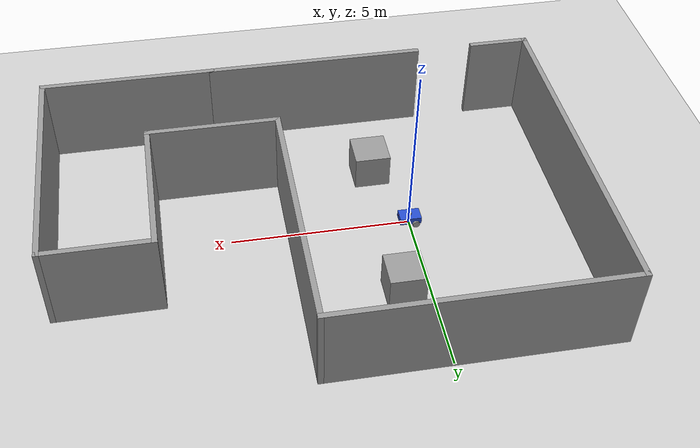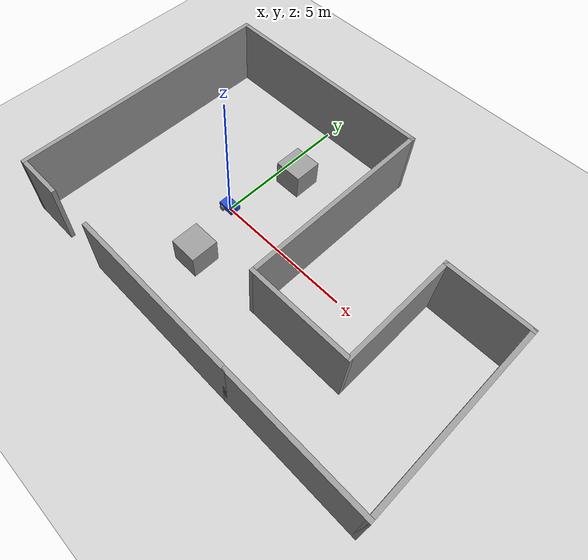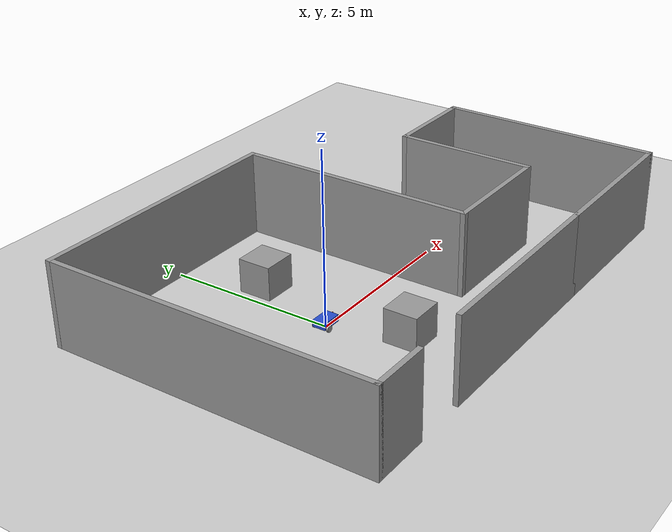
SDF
<sdf version="1.7">
 <world name="default">
  <light name="sun" type="directional">
   <pose>0 0 10 0 -0 0</pose>
   <diffuse>0.8 0.8 0.8 1</diffuse>
   <specular>0.2 0.2 0.2 1</specular>
   <attenuation>
    <range>1000</range>
    <constant>0.9</constant>
    <linear>0.01</linear>
    <quadratic>0.001</quadratic>
   </attenuation>
   <direction>-0.5 0.1 -0.9</direction>
   <spot><inner_angle>0</inner_angle><outer_angle>0</outer_angle><falloff>0</falloff></spot>
  </light>
  <model name="ground_plane">
   <static>1</static>
   <link name="link">
    <collision name="collision">
     <geometry><plane><normal>0 0 1</normal><size>100 100</size></plane></geometry>
     <surface>
      <contact><collide_bitmask>65535</collide_bitmask></contact>
      <friction><ode><mu>100</mu><mu2>50</mu2></ode></friction>
     </surface>
    </collision>
    <visual name="visual">
     <cast_shadows>0</cast_shadows>
     <geometry><plane><normal>0 0 1</normal><size>100 100</size></plane></geometry>
     <material>
      <script><uri>file://media/materials/scripts/gazebo.material</uri><name>Gazebo/Grey</name></script>
     </material>
    </visual>
   </link>
  </model>
  <gravity>0 0 -9.8</gravity>
  <magnetic_field>6e-06 2.3e-05 -4.2e-05</magnetic_field>
  <atmosphere type="adiabatic"/>
  <physics type="ode">
   <max_step_size>0.001</max_step_size>
   <real_time_factor>1</real_time_factor>
   <real_time_update_rate>1000</real_time_update_rate>
  </physics>
  <scene><ambient>0.4 0.4 0.4 1</ambient><background>0.7 0.7 0.7 1</background><shadows>1</shadows></scene>
  <audio><device>default</device></audio>
  <spherical_coordinates>
   <surface_model>EARTH_WGS84</surface_model>
   <latitude_deg>0</latitude_deg>
   <longitude_deg>0</longitude_deg>
   <elevation>0</elevation>
   <heading_deg>0</heading_deg>
  </spherical_coordinates>
  <model name="my_robot">
   <link name="base_link">
    <inertial>
     <pose>0.007034 0 0.000706 1.5708 -0 1.5708</pose>
     <mass>15.76</mass>
     <inertia>
      <ixx>4.53423</ixx>
      <ixy>8.2384e-19</ixy>
      <ixz>-6.39748e-18</ixz>
      <iyy>5.87525</iyy>
      <iyz>0.00290825</iyz>
      <izz>2.26165</izz>
     </inertia>
    </inertial>
    <collision name="base_link_collision">
     <pose>0 0 0.1 0 -0 0</pose>
     <geometry><box><size>0.6 0.4 0.2</size></box></geometry>
    </collision>
    <collision name="base_link_fixed_joint_lump__caster_wheel_link_collision_1">
     <pose>0.2 0 -0.05 0 -0 0</pose>
     <geometry><sphere><radius>0.05</radius></sphere></geometry>
     <surface><friction><ode><mu>0.1</mu><mu2>0.1</mu2></ode></friction></surface>
    </collision>
    <collision name="base_link_fixed_joint_lump__camera_link_collision_2">
     <pose>0.31 0 0.2 0 -0 0</pose>
     <geometry><box><size>0.02 0.02 0.02</size></box></geometry>
    </collision>
    <collision name="base_link_fixed_joint_lump__imu_link_collision_3">
     <pose>0 0 0.01 0 -0 0</pose>
     <geometry><box><size>0.1 0.1 0.1</size></box></geometry>
    </collision>
    <collision name="base_link_fixed_joint_lump__lidar_link_collision_4">
     <pose>0 0 0.225 0 -0 0</pose>
     <geometry><cylinder><length>0.05</length><radius>0.05</radius></cylinder></geometry>
    </collision>
    <visual name="base_link_visual">
     <pose>0 0 0.1 0 -0 0</pose>
     <geometry><box><size>0.6 0.4 0.2</size></box></geometry>
     <material>
      <script><name>Gazebo/Blue</name><uri>file://media/materials/scripts/gazebo.material</uri></script>
     </material>
    </visual>
    <visual name="base_link_fixed_joint_lump__caster_wheel_link_visual_1">
     <pose>0.2 0 -0.05 0 -0 0</pose>
     <geometry><sphere><radius>0.05</radius></sphere></geometry>
     <material>
      <script><name>Gazebo/Grey</name><uri>file://media/materials/scripts/gazebo.material</uri></script>
     </material>
    </visual>
    <visual name="base_link_fixed_joint_lump__camera_link_visual_2">
     <pose>0.31 0 0.2 0 -0 0</pose>
     <geometry><box><size>0.02 0.02 0.02</size></box></geometry>
     <material>
      <script><name>Gazebo/Red</name><uri>file://media/materials/scripts/gazebo.material</uri></script>
     </material>
    </visual>
    <visual name="base_link_fixed_joint_lump__imu_link_visual_3">
     <pose>0 0 0.01 0 -0 0</pose>
     <geometry><box><size>0.1 0.1 0.1</size></box></geometry>
    </visual>
    <visual name="base_link_fixed_joint_lump__lidar_link_visual_4">
     <pose>0 0 0.225 0 -0 0</pose>
     <geometry><cylinder><length>0.05</length><radius>0.05</radius></cylinder></geometry>
    </visual>
    <sensor name="depth_camera" type="depth">
     <visualize>1</visualize>
     <update_rate>10</update_rate>
     <camera name="camera">
      <horizontal_fov>1.089</horizontal_fov>
      <image><width>640</width><height>480</height><format>R8G8B8</format></image>
      <clip><near>0.05</near><far>8</far></clip>
     </camera>
     <plugin name="depth_camera_controller" filename="libgazebo_ros_camera.so">
      <frame_name>camera_depth_frame</frame_name>
     </plugin>
     <pose>0.31 0 0.2 0 -0 0</pose>
    </sensor>
    <sensor name="imu_sensor" type="imu">
     <plugin name="imu_plugin" filename="libgazebo_ros_imu_sensor.so">
      <ros><remapping>~/out:=imu</remapping></ros>
     </plugin>
     <always_on>1</always_on>
     <update_rate>100</update_rate>
     <visualize>1</visualize>
     <imu>
      <angular_velocity>
       <x>
        <noise type="gaussian">
         <mean>0</mean>
         <stddev>0.0002</stddev>
         <bias_mean>7.5e-06</bias_mean>
         <bias_stddev>8e-07</bias_stddev>
        </noise>
       </x>
       <y>
        <noise type="gaussian">
         <mean>0</mean>
         <stddev>0.0002</stddev>
         <bias_mean>7.5e-06</bias_mean>
         <bias_stddev>8e-07</bias_stddev>
        </noise>
       </y>
       <z>
        <noise type="gaussian">
         <mean>0</mean>
         <stddev>0.0002</stddev>
         <bias_mean>7.5e-06</bias_mean>
         <bias_stddev>8e-07</bias_stddev>
        </noise>
       </z>
      </angular_velocity>
      <linear_acceleration>
       <x>
        <noise type="gaussian">
         <mean>0</mean>
         <stddev>0.017</stddev>
         <bias_mean>0.1</bias_mean>
         <bias_stddev>0.001</bias_stddev>
        </noise>
       </x>
       <y>
        <noise type="gaussian">
         <mean>0</mean>
         <stddev>0.017</stddev>
         <bias_mean>0.1</bias_mean>
         <bias_stddev>0.001</bias_stddev>
        </noise>
       </y>
       <z>
        <noise type="gaussian">
         <mean>0</mean>
         <stddev>0.017</stddev>
         <bias_mean>0.1</bias_mean>
         <bias_stddev>0.001</bias_stddev>
        </noise>
       </z>
      </linear_acceleration>
     </imu>
     <pose>0 0 0.01 0 -0 0</pose>
    </sensor>
    <sensor name="lidar" type="ray">
     <always_on>1</always_on>
     <visualize>1</visualize>
     <update_rate>20</update_rate>
     <ray>
      <scan>
       <horizontal>
        <samples>360</samples>
        <resolution>1</resolution>
        <min_angle>0</min_angle>
        <max_angle>6.28</max_angle>
       </horizontal>
       <vertical><samples>1</samples><min_angle>0</min_angle><max_angle>0</max_angle></vertical>
      </scan>
      <range><min>0.12</min><max>3.5</max><resolution>0.015</resolution></range>
      <noise><type>gaussian</type><mean>0</mean><stddev>0.01</stddev></noise>
     </ray>
     <plugin name="lidar_controller" filename="libgazebo_ros_ray_sensor.so">
      <ros><remapping>~/out:=scan</remapping></ros>
      <output_type>sensor_msgs/LaserScan</output_type>
      <frame_name>lidar_link</frame_name>
     </plugin>
     <pose>0 0 0.225 0 -0 0</pose>
    </sensor>
   </link>
   <joint name="base_left_wheel_joint" type="revolute">
    <pose relative_to="base_link">-0.15 0.225 0 0 -0 0</pose>
    <parent>base_link</parent>
    <child>left_wheel_link</child>
    <axis>
     <xyz>0 1 0</xyz>
     <limit><lower>-1e+16</lower><upper>1e+16</upper></limit>
     <dynamics><spring_reference>0</spring_reference><spring_stiffness>0</spring_stiffness></dynamics>
    </axis>
   </joint>
   <link name="left_wheel_link">
    <pose relative_to="base_left_wheel_joint">0 0 0 0 -0 0</pose>
    <inertial>
     <pose>0 0 0 1.5708 -0 0</pose>
     <mass>0.5</mass>
     <inertia>
      <ixx>0.00135417</ixx>
      <ixy>0</ixy>
      <ixz>0</ixz>
      <iyy>0.00135417</iyy>
      <iyz>0</iyz>
      <izz>0.0025</izz>
     </inertia>
    </inertial>
    <collision name="left_wheel_link_collision">
     <pose>0 0 0 1.5708 -0 0</pose>
     <geometry><cylinder><length>0.05</length><radius>0.1</radius></cylinder></geometry>
    </collision>
    <visual name="left_wheel_link_visual">
     <pose>0 0 0 1.5708 -0 0</pose>
     <geometry><cylinder><length>0.05</length><radius>0.1</radius></cylinder></geometry>
     <material>
      <script><name>Gazebo/Grey</name><uri>file://media/materials/scripts/gazebo.material</uri></script>
     </material>
    </visual>
   </link>
   <joint name="base_right_wheel_joint" type="revolute">
    <pose relative_to="base_link">-0.15 -0.225 0 0 -0 0</pose>
    <parent>base_link</parent>
    <child>right_wheel_link</child>
    <axis>
     <xyz>0 1 0</xyz>
     <limit><lower>-1e+16</lower><upper>1e+16</upper></limit>
     <dynamics><spring_reference>0</spring_reference><spring_stiffness>0</spring_stiffness></dynamics>
    </axis>
   </joint>
   <link name="right_wheel_link">
    <pose relative_to="base_right_wheel_joint">0 0 0 0 -0 0</pose>
    <inertial>
     <pose>0 0 0 1.5708 -0 0</pose>
     <mass>0.5</mass>
     <inertia>
      <ixx>0.00135417</ixx>
      <ixy>0</ixy>
      <ixz>0</ixz>
      <iyy>0.00135417</iyy>
      <iyz>0</iyz>
      <izz>0.0025</izz>
     </inertia>
    </inertial>
    <collision name="right_wheel_link_collision">
     <pose>0 0 0 1.5708 -0 0</pose>
     <geometry><cylinder><length>0.05</length><radius>0.1</radius></cylinder></geometry>
    </collision>
    <visual name="right_wheel_link_visual">
     <pose>0 0 0 1.5708 -0 0</pose>
     <geometry><cylinder><length>0.05</length><radius>0.1</radius></cylinder></geometry>
     <material>
      <script><name>Gazebo/Grey</name><uri>file://media/materials/scripts/gazebo.material</uri></script>
     </material>
    </visual>
   </link>
   <static>0</static>
   <plugin name="diff_drive_controller" filename="libgazebo_ros_diff_drive.so">
    <update_rate>30</update_rate>
    <left_joint>base_left_wheel_joint</left_joint>
    <right_joint>base_right_wheel_joint</right_joint>
    <wheel_separation>0.45</wheel_separation>
    <wheel_diameter>0.2</wheel_diameter>
    <max_wheel_torque>20</max_wheel_torque>
    <max_wheel_acceleration>1.0</max_wheel_acceleration>
    <command_topic>cmd_vel</command_topic>
    <publish_odom>1</publish_odom>
    <publish_odom_tf>0</publish_odom_tf>
    <publish_wheel_tf>1</publish_wheel_tf>
    <odometry_topic>odom</odometry_topic>
    <odometry_frame>odom</odometry_frame>
    <robot_base_frame>base_link</robot_base_frame>
   </plugin>
   <pose>-0.011978 -0.001573 0.099998 -3e-06 -8e-06 -0.005737</pose>
  </model>
  <model name="W3">
   <model name="W2">
    <pose>-0 -1e-06 0 0 -0 0</pose>
    <link name="Wall_0">
     <collision name="Wall_0_Collision">
      <geometry><box><size>6.25 0.15 2.5</size></box></geometry>
      <pose>0 0 1.25 0 -0 0</pose>
     </collision>
     <visual name="Wall_0_Visual">
      <pose>0 0 1.25 0 -0 0</pose>
      <geometry><box><size>6.25 0.15 2.5</size></box></geometry>
      <material>
       <script><uri>file://media/materials/scripts/gazebo.material</uri><name>Gazebo/Grey</name></script>
       <ambient>1 1 1 1</ambient>
      </material>
      <meta><layer>0</layer></meta>
     </visual>
     <pose>-0.75 -4.8 0 0 -0 0</pose>
    </link>
    <link name="Wall_1">
     <collision name="Wall_1_Collision">
      <geometry><box><size>5 0.15 2.5</size></box></geometry>
      <pose>0 0 1.25 0 -0 0</pose>
     </collision>
     <visual name="Wall_1_Visual">
      <pose>0 0 1.25 0 -0 0</pose>
      <geometry><box><size>5 0.15 2.5</size></box></geometry>
      <material>
       <script><uri>file://media/materials/scripts/gazebo.material</uri><name>Gazebo/Grey</name></script>
       <ambient>1 1 1 1</ambient>
      </material>
      <meta><layer>0</layer></meta>
     </visual>
     <pose>4.725 -4.8 0 0 -0 0</pose>
    </link>
    <link name="Wall_2">
     <collision name="Wall_2_Collision">
      <geometry><box><size>6.75 0.15 2.5</size></box></geometry>
      <pose>0 0 1.25 0 -0 0</pose>
     </collision>
     <visual name="Wall_2_Visual">
      <pose>0 0 1.25 0 -0 0</pose>
      <geometry><box><size>6.75 0.15 2.5</size></box></geometry>
      <material>
       <script><uri>file://media/materials/scripts/gazebo.material</uri><name>Gazebo/Grey</name></script>
       <ambient>1 1 1 1</ambient>
      </material>
      <meta><layer>0</layer></meta>
     </visual>
     <pose>7.15 -1.5 0 0 -0 1.5708</pose>
    </link>
    <link name="Wall_3">
     <collision name="Wall_3_Collision">
      <geometry><box><size>3 0.15 2.5</size></box></geometry>
      <pose>0 0 1.25 0 -0 0</pose>
     </collision>
     <visual name="Wall_3_Visual">
      <pose>0 0 1.25 0 -0 0</pose>
      <geometry><box><size>3 0.15 2.5</size></box></geometry>
      <material>
       <script><uri>file://media/materials/scripts/gazebo.material</uri><name>Gazebo/Grey</name></script>
       <ambient>1 1 1 1</ambient>
      </material>
      <meta><layer>0</layer></meta>
     </visual>
     <pose>5.725 1.8 0 0 -0 3.14159</pose>
    </link>
    <link name="Wall_4">
     <collision name="Wall_4_Collision">
      <geometry><box><size>4.25 0.15 2.5</size></box></geometry>
      <pose>0 0 1.25 0 -0 0</pose>
     </collision>
     <visual name="Wall_4_Visual">
      <pose>0 0 1.25 0 -0 0</pose>
      <geometry><box><size>4.25 0.15 2.5</size></box></geometry>
      <material>
       <script><uri>file://media/materials/scripts/gazebo.material</uri><name>Gazebo/Grey</name></script>
       <ambient>1 1 1 1</ambient>
      </material>
      <meta><layer>0</layer></meta>
     </visual>
     <pose>4.3 -0.25 0 0 -0 -1.5708</pose>
    </link>
    <link name="Wall_5">
     <collision name="Wall_5_Collision">
      <geometry><box><size>3.75 0.15 2.5</size></box></geometry>
      <pose>0 0 1.25 0 -0 0</pose>
     </collision>
     <visual name="Wall_5_Visual">
      <pose>0 0 1.25 0 -0 0</pose>
      <geometry><box><size>3.75 0.15 2.5</size></box></geometry>
      <material>
       <script><uri>file://media/materials/scripts/gazebo.material</uri><name>Gazebo/Grey</name></script>
       <ambient>1 1 1 1</ambient>
      </material>
      <meta><layer>0</layer></meta>
     </visual>
     <pose>2.5 -2.3 0 0 -0 3.14159</pose>
    </link>
    <link name="Wall_6">
     <collision name="Wall_6_Collision">
      <geometry><box><size>7.25 0.15 2.5</size></box></geometry>
      <pose>0 0 1.25 0 -0 0</pose>
     </collision>
     <visual name="Wall_6_Visual">
      <pose>0 0 1.25 0 -0 0</pose>
      <geometry><box><size>7.25 0.15 2.5</size></box></geometry>
      <material>
       <script><uri>file://media/materials/scripts/gazebo.material</uri><name>Gazebo/Grey</name></script>
       <ambient>1 1 1 1</ambient>
      </material>
      <meta><layer>0</layer></meta>
     </visual>
     <pose>0.7 1.25 0 0 -0 1.5708</pose>
    </link>
    <link name="Wall_7">
     <collision name="Wall_7_Collision">
      <geometry><box><size>8 0.15 2.5</size></box></geometry>
      <pose>0 0 1.25 0 -0 0</pose>
     </collision>
     <visual name="Wall_7_Visual">
      <pose>0 0 1.25 0 -0 0</pose>
      <geometry><box><size>8 0.15 2.5</size></box></geometry>
      <material>
       <script><uri>file://media/materials/scripts/gazebo.material</uri><name>Gazebo/Grey</name></script>
       <ambient>1 1 1 1</ambient>
      </material>
      <meta><layer>0</layer></meta>
     </visual>
     <pose>-3.225 4.8 0 0 -0 3.14159</pose>
    </link>
    <link name="Wall_8">
     <collision name="Wall_8_Collision">
      <geometry><box><size>9.75 0.15 2.5</size></box></geometry>
      <pose>0 0 1.25 0 -0 0</pose>
     </collision>
     <visual name="Wall_8_Visual">
      <pose>0 0 1.25 0 -0 0</pose>
      <geometry><box><size>9.75 0.15 2.5</size></box></geometry>
      <material>
       <script><uri>file://media/materials/scripts/gazebo.material</uri><name>Gazebo/Grey</name></script>
       <ambient>1 1 1 1</ambient>
      </material>
      <meta><layer>0</layer></meta>
     </visual>
     <pose>-7.15 0 0 0 -0 -1.5708</pose>
    </link>
    <link name="Wall_9">
     <collision name="Wall_9_Collision">
      <geometry><box><size>1.75 0.15 2.5</size></box></geometry>
      <pose>0 0 1.25 0 -0 0</pose>
     </collision>
     <visual name="Wall_9_Visual">
      <pose>0 0 1.25 0 -0 0</pose>
      <geometry><box><size>1.75 0.15 2.5</size></box></geometry>
      <material>
       <script><uri>file://media/materials/scripts/gazebo.material</uri><name>Gazebo/Grey</name></script>
       <ambient>1 1 1 1</ambient>
      </material>
      <meta><layer>0</layer></meta>
     </visual>
     <pose>-6.35 -4.8 0 0 -0 0</pose>
    </link>
    <static>1</static>
   </model>
   <static>0</static>
   <pose>2.66898 0.197242 0 0 -0 0</pose>
  </model>
  <model name="unit_box">
   <pose>0.73281 2.53288 0.499995 -1e-05 -0 0</pose>
   <link name="link">
    <inertial>
     <mass>1</mass>
     <inertia>
      <ixx>0.166667</ixx>
      <ixy>0</ixy>
      <ixz>0</ixz>
      <iyy>0.166667</iyy>
      <iyz>0</iyz>
      <izz>0.166667</izz>
     </inertia>
    </inertial>
    <collision name="collision"><geometry><box><size>1 1 1</size></box></geometry></collision>
    <visual name="visual">
     <geometry><box><size>1 1 1</size></box></geometry>
     <material>
      <script><name>Gazebo/Grey</name><uri>file://media/materials/scripts/gazebo.material</uri></script>
     </material>
    </visual>
   </link>
  </model>
  <model name="unit_box_0">
   <pose>0.712016 -2.13506 0.5 0 -0 0</pose>
   <link name="link">
    <inertial>
     <mass>1</mass>
     <inertia>
      <ixx>0.166667</ixx>
      <ixy>0</ixy>
      <ixz>0</ixz>
      <iyy>0.166667</iyy>
      <iyz>0</iyz>
      <izz>0.166667</izz>
     </inertia>
    </inertial>
    <collision name="collision"><geometry><box><size>1 1 1</size></box></geometry></collision>
    <visual name="visual">
     <geometry><box><size>1 1 1</size></box></geometry>
     <material>
      <script><name>Gazebo/Grey</name><uri>file://media/materials/scripts/gazebo.material</uri></script>
     </material>
    </visual>
   </link>
  </model>
 </world>
</sdf>
